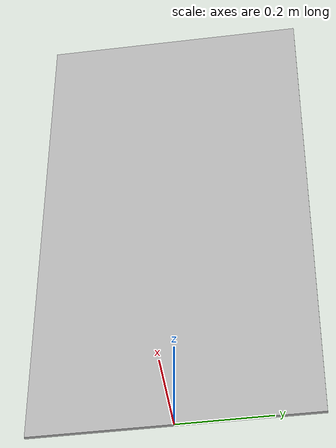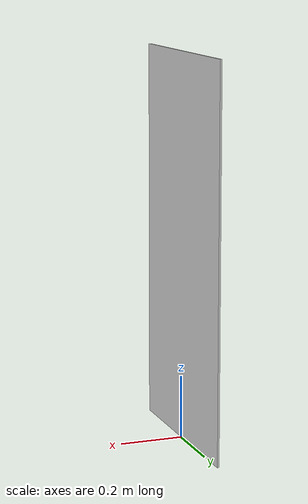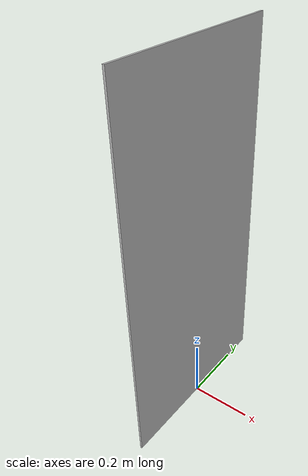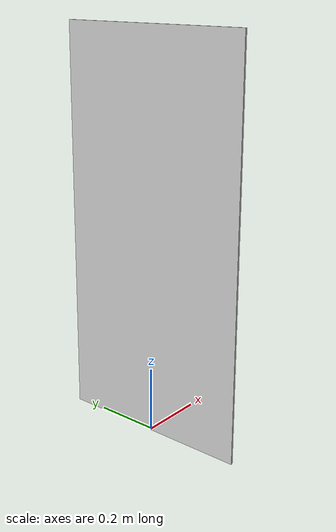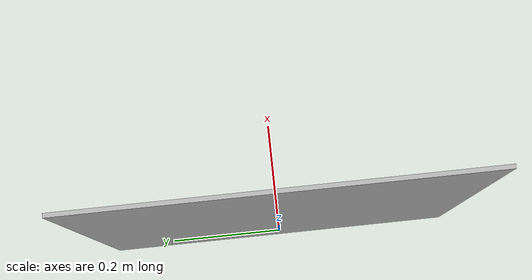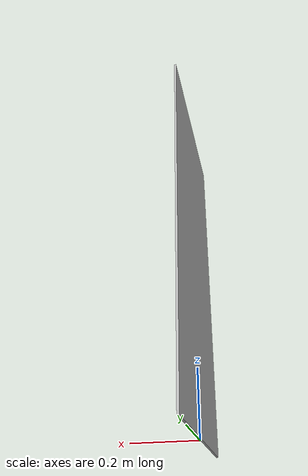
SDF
<?xml version="1.0" ?>
<sdf version="1.5">
  <model name="buoy_gun">
    <static>true</static>
    <link name="base_link">

      <collision name="collision">
        <pose>0 0 0 0 0 0</pose>
        <geometry>
          <mesh>
            <uri>model://buoy_gun/meshes/buoy_gun.dae</uri>
          </mesh>
        </geometry>
      </collision>

      <visual name="visual">
        <cast_shadows>true</cast_shadows>
        <pose>0 0 0 0 0 0</pose>
        <geometry>
          <mesh>
            <uri>model://buoy_gun/meshes/buoy_gun.dae</uri>
          </mesh>
        </geometry>
      </visual>
    </link>
  </model>
</sdf>
